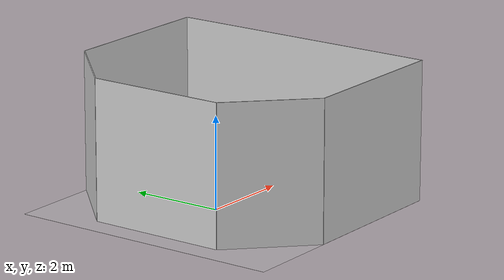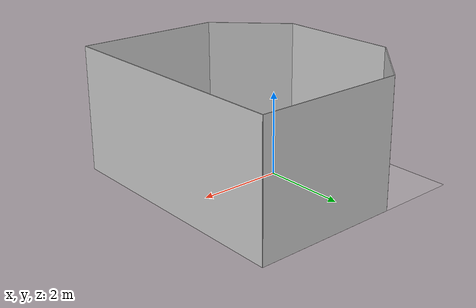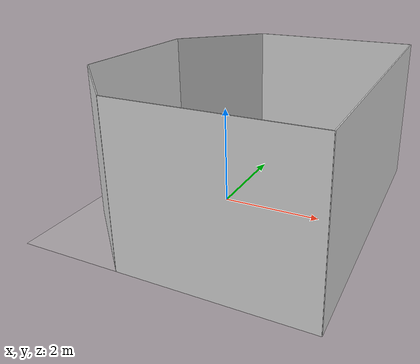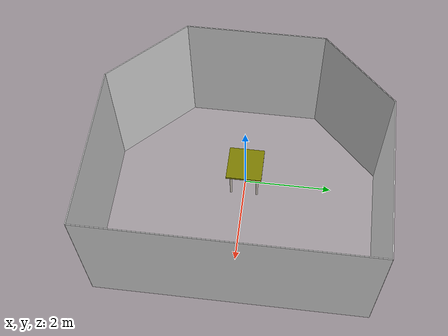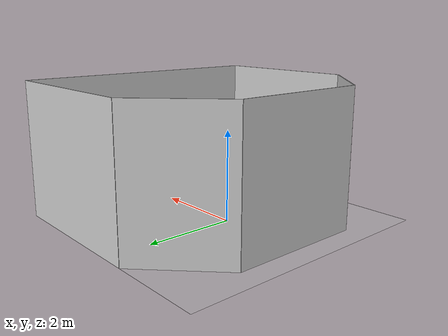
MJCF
<?xml version="1.0" ?>
<mujoco model="table_arena">

  <asset>

    <texture builtin="gradient" height="256" rgb1=".9 .9 1." rgb2=".2 .3 .4" type="skybox" width="256"/>

    <texture file="/home/zz/mujoco_RL_file/robosuite/robosuite/models/assets/arenas/../textures/light-gray-floor-tile.png" type="2d" name="texplane"/>

    <material name="floorplane" reflectance="0.01" shininess="0.0" specular="0.0" texrepeat="2 2" texture="texplane" texuniform="true"/>

    <texture file="/home/zz/mujoco_RL_file/robosuite/robosuite/models/assets/arenas/../textures/ceramic.png" type="cube" name="tex-ceramic"/>

    <material name="table_ceramic" reflectance="0.0" shininess="0.0" specular="0.2" texrepeat="1 1" texture="tex-ceramic"/>

    <texture file="/home/zz/mujoco_RL_file/robosuite/robosuite/models/assets/arenas/../textures/steel-brushed.png" type="cube" name="tex-steel-brushed"/>

    <material name="table_legs_metal" reflectance="0.8" shininess="0.8" texrepeat="1 1" texture="tex-steel-brushed"/>

    <texture file="/home/zz/mujoco_RL_file/robosuite/robosuite/models/assets/arenas/../textures/light-gray-plaster.png" type="2d" name="tex-light-gray-plaster"/>

    <material name="walls_mat" reflectance="0.0" shininess="0.1" specular="0.1" texrepeat="3 3" texture="tex-light-gray-plaster" texuniform="true"/>

    <texture name="textable" builtin="flat" height="512" width="512" rgb1="0.5 0.5 0.5" rgb2="0.5 0.5 0.5"/>

    <material name="table_mat" texture="textable"/>

  </asset>

  <worldbody>

    <geom condim="3" group="1" material="floorplane" name="floor" pos="0.0 0.0 0.0" size="3 3 .125" type="plane"/>

    <geom pos="-1.25 2.25 1.5" quat="0.6532815 0.6532815 0.2705981 0.2705981" size="1.06 1.5 0.01" type="box" conaffinity="0" contype="0" group="1" name="wall_leftcorner_visual" material="walls_mat"/>

    <geom pos="-1.25 -2.25 1.5" quat="0.6532815 0.6532815 -0.2705981 -0.2705981" size="1.06 1.5 0.01" type="box" conaffinity="0" contype="0" group="1" name="wall_rightcorner_visual" material="walls_mat"/>

    <geom pos="1.25 3.0 1.5" quat="0.7071 0.7071 0 0" size="1.75 1.5 0.01" type="box" conaffinity="0" contype="0" group="1" name="wall_left_visual" material="walls_mat"/>

    <geom pos="1.25 -3.0 1.5" quat="0.7071 -0.7071 0 0" size="1.75 1.5 0.01" type="box" conaffinity="0" contype="0" group="1" name="wall_right_visual" material="walls_mat"/>

    <geom pos="-2.0 0.0 1.5" quat="0.5 0.5 0.5 0.5" size="1.5 1.5 0.01" type="box" conaffinity="0" contype="0" group="1" name="wall_rear_visual" material="walls_mat"/>

    <geom pos="3.0 0.0 1.5" quat="0.5 0.5 -0.5 -0.5" size="3 1.5 0.01" type="box" conaffinity="0" contype="0" group="1" name="wall_front_visual" material="walls_mat"/>

    <body name="table" pos="0.0 0.0 0.775">

      <geom pos="0 0 0" size="0.4 0.4 0.025" type="box" group="0" name="table_collision" friction="1 0.005 0.0001" rgba="0.5 0.5 0 1"/>

      <geom pos="0 0 0" size="0.4 0.4 0.025" type="box" conaffinity="0" contype="0" group="1" name="table_visual" material="table_ceramic"/>

      <site pos="0.0 0.0 0.025" name="table_top" size="0.001 0.001 0.001" rgba="0 0 0 0"/>

      <geom pos="0.30000000000000004 0.30000000000000004 -0.3875" size="0.025 0.3875" type="cylinder" conaffinity="0" contype="0" group="1" name="table_leg1_visual" material="table_legs_metal"/>

      <geom pos="-0.30000000000000004 0.30000000000000004 -0.3875" size="0.025 0.3875" type="cylinder" conaffinity="0" contype="0" group="1" name="table_leg2_visual" material="table_legs_metal"/>

      <geom pos="-0.30000000000000004 -0.30000000000000004 -0.3875" size="0.025 0.3875" type="cylinder" conaffinity="0" contype="0" group="1" name="table_leg3_visual" material="table_legs_metal"/>

      <geom pos="0.30000000000000004 -0.30000000000000004 -0.3875" size="0.025 0.3875" type="cylinder" conaffinity="0" contype="0" group="1" name="table_leg4_visual" material="table_legs_metal"/>

    </body>

    <light pos="1.0 1.0 1.5" dir="-0.2 -0.2 -1" specular="0.3 0.3 0.3" directional="true" castshadow="false"/>

    <camera mode="fixed" name="frontview" pos="1.6 0.0 1.45" quat="0.56 0.43 0.43 0.56"/>

    <camera mode="fixed" name="birdview" pos="-0.2 0.0 3.0" quat="0.7071 0 0 0.7071"/>

    <camera mode="fixed" name="agentview" pos="0.5 0.0 1.35" quat="0.653 0.271 0.271 0.653"/>

    <camera mode="fixed" name="sideview" pos="-0.05651774593317116 1.2761224129427358 1.4879572214102434" quat="0.009905065491771751 0.006877963156909582 0.5912228352893879 0.806418094001364"/>

    <body mocap="true" pos="0.0 0.0 -1.0" name="left_eef_target">
      <geom rgba="0.898 0.420 0.435 0.5" conaffinity="0" contype="0" type="box" size="0.05 0.05 0.05" pos="0 0 0" group="2" name="left_eef_target_box"/>
      <geom rgba="0.898 0.420 0.435 0.8" conaffinity="0" contype="0" type="sphere" size="0.01" pos="0 0 0" group="2" name="left_eef_target_sphere"/>
    </body>
    <body mocap="true" pos="0.0 0.0 -1.0" name="right_eef_target">
      <geom rgba="0.208 0.314 0.439 0.5" conaffinity="0" contype="0" type="box" size="0.05 0.05 0.05" pos="0 0 0" group="2" name="right_eef_target_box"/>
      <geom rgba="0.208 0.314 0.439 0.8" conaffinity="0" contype="0" type="sphere" size="0.01" pos="0 0 0" group="2" name="right_eef_target_sphere"/>
    </body>
  </worldbody>

  <actuator/>
  <sensor/>
  <tendon/>
  <equality/>
  <contact/>
</mujoco>
